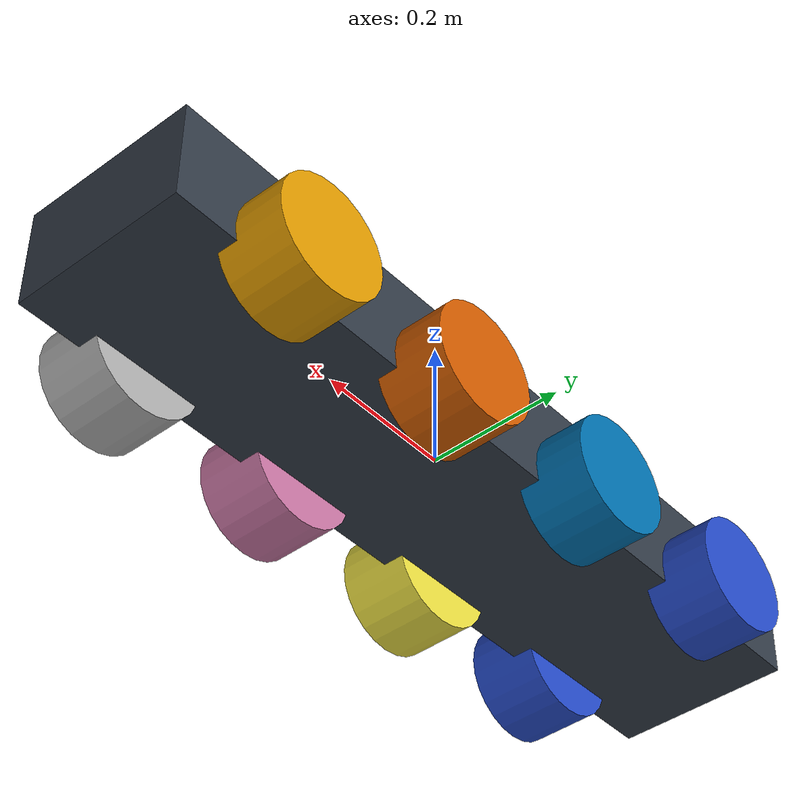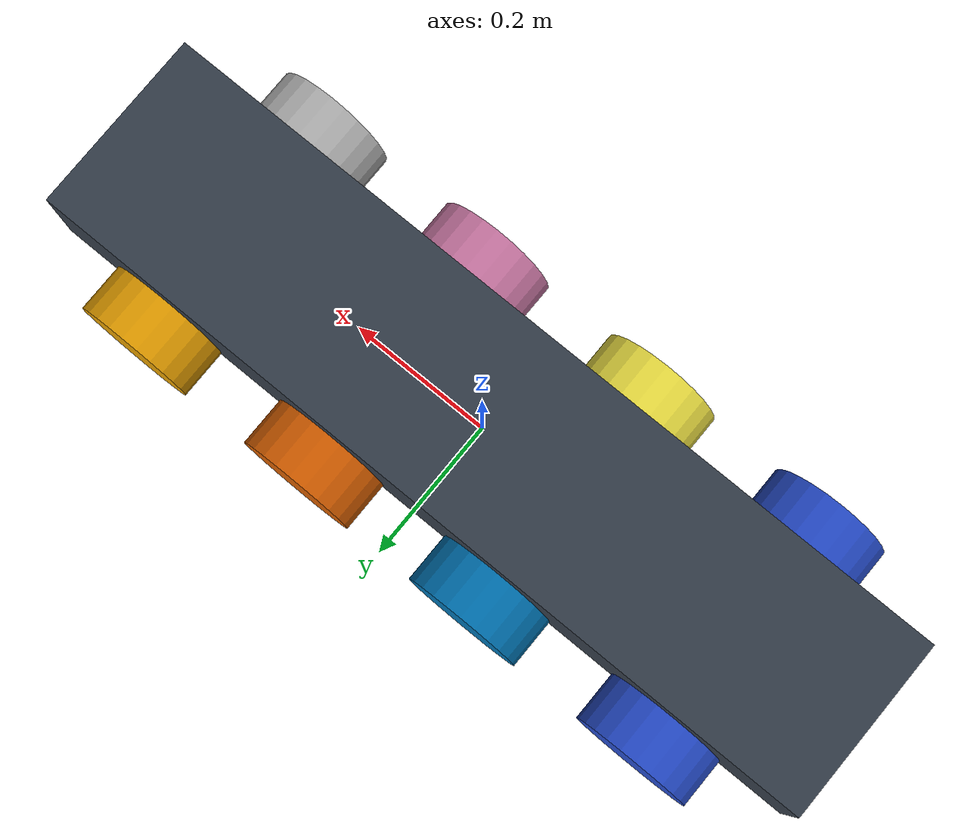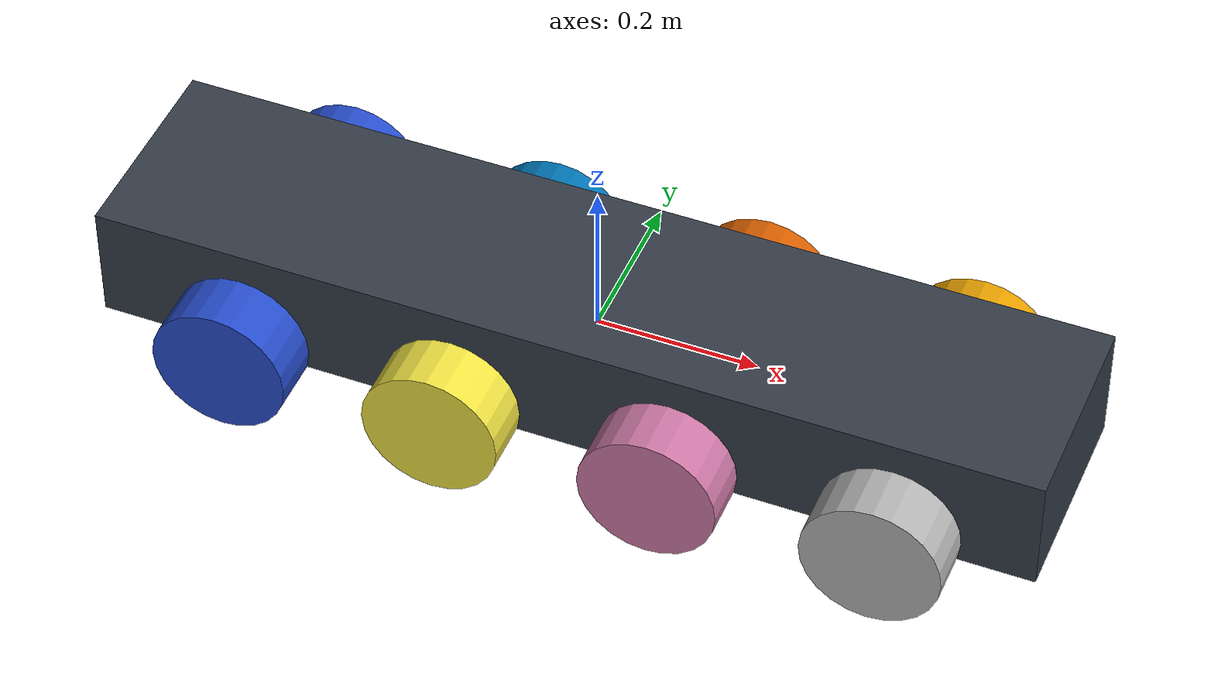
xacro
<?xml version="1.0" ?>
<robot name="agv" xmlns:xacro="https://www.ros.org/wiki/xacro" >

  <material name="black">
    <color rgba="0.0 0.0 0.0 1.0"/>
  </material>
  <material name="blue">
    <color rgba="0.203125 0.23828125 0.28515625 1.0"/>
  </material>
  <material name="green">
    <color rgba="0.0 0.8 0.0 1.0"/>
  </material>
  <material name="grey">
    <color rgba="0.2 0.2 0.2 1.0"/>
  </material>
  <material name="orange">
    <color rgba="1.0 0.423529411765 0.0392156862745 1.0"/>
  </material>
  <material name="brown">
    <color rgba="0.870588235294 0.811764705882 0.764705882353 1.0"/>
  </material>
  <material name="red">
    <color rgba="0.80078125 0.12890625 0.1328125 1.0"/>
  </material>
  <material name="white">
    <color rgba="1.0 1.0 1.0 1.0"/>
  </material>

  <gazebo reference="link_chassis">
    <material>Gazebo/Orange</material>
  </gazebo>
  <gazebo reference="link_left_wheel">
    <material>Gazebo/Blue</material>
  </gazebo>
  <gazebo reference="link_right_wheel">
    <material>Gazebo/Blue</material>
  </gazebo>

  <link name="link_chassis">
    <!-- pose and inertial -->
    <pose>0 0 0.1 0 0 0</pose>

    <inertial>
      <mass value="26"/>
      <origin rpy="0 0 0" xyz="0 0 0.1"/>
      <inertia ixx="0.0395416666667" ixy="0" ixz="0" iyy="0.106208333333" iyz="0" izz="0.106208333333"/>
    </inertial>

    <collision name="collision_chassis">
      <geometry>
        <box size="1.17 0.26 0.15"/>
      </geometry>
    </collision>

    <visual>
      <origin rpy="0 0 0" xyz="0 0 0"/>
      <geometry>
        <box size="1.17 0.26 0.15"/>
      </geometry>
      <material name="blue"/>
    </visual>

    <!-- caster front -->

    </link>

  <!-- Create wheel right -->

  <link name="link_right_wheel">
    <inertial>
      <mass value="0.2"/>
      <origin rpy="0 1.5707 1.5707" xyz="0 0 0"/>
      <inertia ixx="0.00052666666" ixy="0" ixz="0" iyy="0.00052666666" iyz="0" izz="0.001"/>
    </inertial>

    <collision name="link_right_wheel_collision">
      <origin rpy="0 1.5707 1.5707" xyz="0 0 0" />
      <geometry>
       <cylinder length="0.1" radius="0.085"/>
      </geometry>
    </collision>

    <visual name="link_right_wheel_visual">
      <origin rpy="0 1.5707 1.5707" xyz="0 0 0"/>
      <geometry>
       <cylinder length="0.1" radius="0.085"/>
      </geometry>
    </visual>

  </link>

    <link name="link_left_wheel">
    <inertial>
      <mass value="0.2"/>
      <origin rpy="0 1.5707 1.5707" xyz="0 0 0"/>
      <inertia ixx="0.00052666666" ixy="0" ixz="0" iyy="0.00052666666" iyz="0" izz="0.001"/>
    </inertial>

    <collision name="link_left_wheel_collision">
      <origin rpy="0 1.5707 1.5707" xyz="0 0 0" />
      <geometry>
        <cylinder length="0.1" radius="0.085"/>
      </geometry>
    </collision>

    <visual name="link_left_wheel_visual">
      <origin rpy="0 1.5707 1.5707" xyz="0 0 0"/>
      <geometry>
        <cylinder length="0.1" radius="0.085"/>
      </geometry>
    </visual>

  </link>

    <link name="link_left_wheel_2">
    <inertial>
      <mass value="0.2"/>
      <origin rpy="0 1.5707 1.5707" xyz="0 0 0"/>
      <inertia ixx="0.00052666666" ixy="0" ixz="0" iyy="0.00052666666" iyz="0" izz="0.001"/>
    </inertial>

    <collision name="link_left_wheel_collision_2">
      <origin rpy="0 1.5707 1.5707" xyz="0 0 0" />
      <geometry>
        <cylinder length="0.1" radius="0.085"/>
      </geometry>
    </collision>

    <visual name="link_left_wheel_visual_2">
      <origin rpy="0 1.5707 1.5707" xyz="0 0 0"/>
      <geometry>
       <cylinder length="0.1" radius="0.085"/>
      </geometry>
    </visual>

  </link>

      <link name="link_right_wheel_2">
    <inertial>
      <mass value="0.2"/>
      <origin rpy="0 1.5707 1.5707" xyz="0 0 0"/>
      <inertia ixx="0.00052666666" ixy="0" ixz="0" iyy="0.00052666666" iyz="0" izz="0.001"/>
    </inertial>

    <collision name="link_right_wheel_collision_2">
      <origin rpy="0 1.5707 1.5707" xyz="0 0 0" />
      <geometry>
       <cylinder length="0.1" radius="0.085"/>
      </geometry>
    </collision>

    <visual name="link_right_wheel_visual_2">
      <origin rpy="0 1.5707 1.5707" xyz="0 0 0"/>
      <geometry>
      <cylinder length="0.1" radius="0.085"/>
      </geometry>
    </visual>

  </link>

          <link name="link_right_wheel_3">
    <inertial>
      <mass value="0.2"/>
      <origin rpy="0 1.5707 1.5707" xyz="0 0 0"/>
      <inertia ixx="0.00052666666" ixy="0" ixz="0" iyy="0.00052666666" iyz="0" izz="0.001"/>
    </inertial>

    <collision name="link_right_wheel_collision_3">
      <origin rpy="0 1.5707 1.5707" xyz="0 0 0" />
      <geometry>
      <cylinder length="0.1" radius="0.085"/>
      </geometry>
    </collision>

    <visual name="link_right_wheel_visual_3">
      <origin rpy="0 1.5707 1.5707" xyz="0 0 0"/>
      <geometry>
        <cylinder length="0.1" radius="0.085"/>
      </geometry>
    </visual>

  </link>

          <link name="link_left_wheel_3">
    <inertial>
      <mass value="0.2"/>
      <origin rpy="0 1.5707 1.5707" xyz="0 0 0"/>
      <inertia ixx="0.00052666666" ixy="0" ixz="0" iyy="0.00052666666" iyz="0" izz="0.001"/>
    </inertial>

    <collision name="link_left_wheel_collision_3">
      <origin rpy="0 1.5707 1.5707" xyz="0 0 0" />
      <geometry>
      <cylinder length="0.1" radius="0.085"/>
      </geometry>
    </collision>

    <visual name="link_left_wheel_visual_3">
      <origin rpy="0 1.5707 1.5707" xyz="0 0 0"/>
      <geometry>
        <cylinder length="0.1" radius="0.085"/>
      </geometry>
    </visual>

  </link>

           <link name="link_left_wheel_4">
    <inertial>
      <mass value="0.2"/>
      <origin rpy="0 1.5707 1.5707" xyz="0 0 0"/>
      <inertia ixx="0.00052666666" ixy="0" ixz="0" iyy="0.00052666666" iyz="0" izz="0.001"/>
    </inertial>

    <collision name="link_left_wheel_collision_4">
      <origin rpy="0 1.5707 1.5707" xyz="0 0 0" />
      <geometry>
        <cylinder length="0.1" radius="0.085"/>
      </geometry>
    </collision>

    <visual name="link_left_wheel_visual_4">
      <origin rpy="0 1.5707 1.5707" xyz="0 0 0"/>
      <geometry>
        <cylinder length="0.1" radius="0.085"/>
      </geometry>
    </visual>

  </link>

           <link name="link_right_wheel_4">
    <inertial>
      <mass value="0.2"/>
      <origin rpy="0 1.5707 1.5707" xyz="0 0 0"/>
      <inertia ixx="0.00052666666" ixy="0" ixz="0" iyy="0.00052666666" iyz="0" izz="0.001"/>
    </inertial>

    <collision name="link_right_wheel_collision_4">
      <origin rpy="0 1.5707 1.5707" xyz="0 0 0" />
      <geometry>
        <cylinder length="0.1" radius="0.085"/>
      </geometry>
    </collision>

    <visual name="link_right_wheel_visual_4">
      <origin rpy="0 1.5707 1.5707" xyz="0 0 0"/>
      <geometry>
        <cylinder length="0.1" radius="0.085"/>
      </geometry>
    </visual>

  </link>

  <!--   Joint for right wheel  -->
  <joint name="joint_right_wheel" type="continuous">
    <origin rpy="0 0 0" xyz="-0.4 0.15 -0.05"/>
    <child link="link_right_wheel" />
    <parent link="link_chassis"/>
    <axis rpy="0 0 0" xyz="0 1 0"/>
    <limit effort="10000" velocity="1000"/>
    <joint_properties damping="1.0" friction="1.0" />
  </joint>

  <joint name="joint_left_wheel" type="continuous">
    <origin rpy="0 0 0" xyz="-0.4 -0.15 -0.05"/>
    <child link="link_left_wheel" />
    <parent link="link_chassis"/>
    <axis rpy="0 0 0" xyz="0 1 0"/>
    <limit effort="10000" velocity="1000"/>
    <joint_properties damping="1.0" friction="1.0" />
  </joint>

   <joint name="joint_right_wheel_2" type="continuous">
    <origin rpy="0 0 0" xyz="-0.13 0.15 -0.05"/>
    <child link="link_right_wheel_2" />
    <parent link="link_chassis"/>
    <axis rpy="0 0 0" xyz="0 1 0"/>
    <limit effort="10000" velocity="1000"/>
    <joint_properties damping="1.0" friction="1.0" />
  </joint>

  <joint name="joint_left_wheel_2" type="continuous">
    <origin rpy="0 0 0" xyz="-0.13 -0.15 -0.05"/>
    <child link="link_left_wheel_2" />
    <parent link="link_chassis"/>
    <axis rpy="0 0 0" xyz="0 1 0"/>
    <limit effort="10000" velocity="1000"/>
    <joint_properties damping="1.0" friction="1.0" />
  </joint>

  <!--   Joint for right wheel  -->
  <joint name="joint_right_wheel_3" type="continuous">
    <origin rpy="0 0 0" xyz="0.14 0.15 -0.05"/>
    <child link="link_right_wheel_3" />
    <parent link="link_chassis"/>
    <axis rpy="0 0 0" xyz="0 1 0"/>
    <limit effort="10000" velocity="1000"/>
    <joint_properties damping="1.0" friction="1.0" />
  </joint>

  <!--   Joint for right wheel  -->
  <joint name="joint_left_wheel_3" type="continuous">
    <origin rpy="0 0 0" xyz="0.14 -0.15 -0.05"/>
    <child link="link_left_wheel_3" />
    <parent link="link_chassis"/>
    <axis rpy="0 0 0" xyz="0 1 0"/>
    <limit effort="10000" velocity="1000"/>
    <joint_properties damping="1.0" friction="1.0" />
  </joint>

      <joint name="joint_right_wheel_4" type="continuous">
    <origin rpy="0 0 0" xyz="0.41 0.15 -0.05"/>
    <child link="link_right_wheel_4" />
    <parent link="link_chassis"/>
    <axis rpy="0 0 0" xyz="0 1 0"/>
    <limit effort="10000" velocity="1000"/>
    <joint_properties damping="1.0" friction="1.0" />
  </joint>

  <!--   Joint for right wheel  -->
  <joint name="joint_left_wheel_4" type="continuous">
    <origin rpy="0 0 0" xyz="0.41 -0.15 -0.05"/>
    <child link="link_left_wheel_4" />
    <parent link="link_chassis"/>
    <axis rpy="0 0 0" xyz="0 1 0"/>
    <limit effort="10000" velocity="1000"/>
    <joint_properties damping="1.0" friction="1.0" />
  </joint>

  <!--   Joint for right wheel  -->

  <gazebo>
    <plugin name="gazebo_ros_control" filename="libgazebo_ros_control.so"/>
  </gazebo>

</robot>
